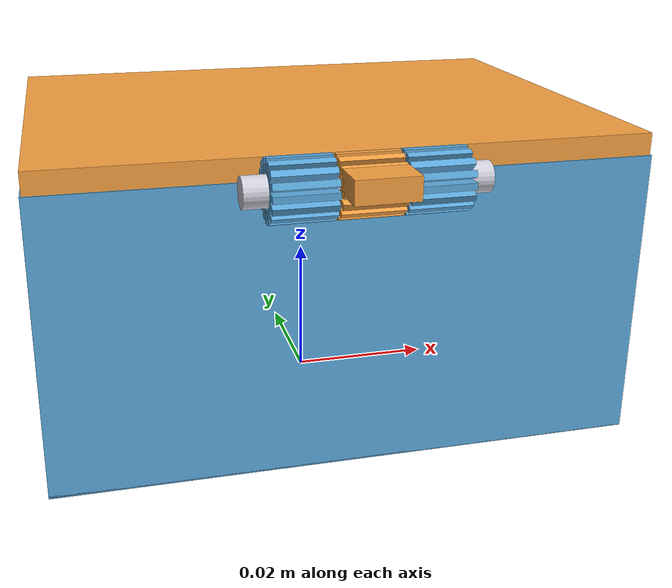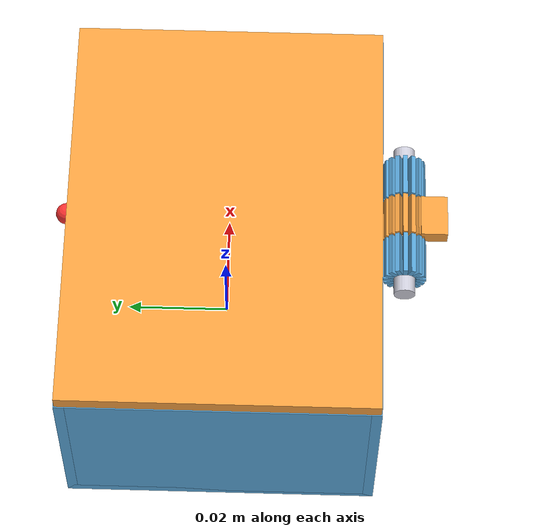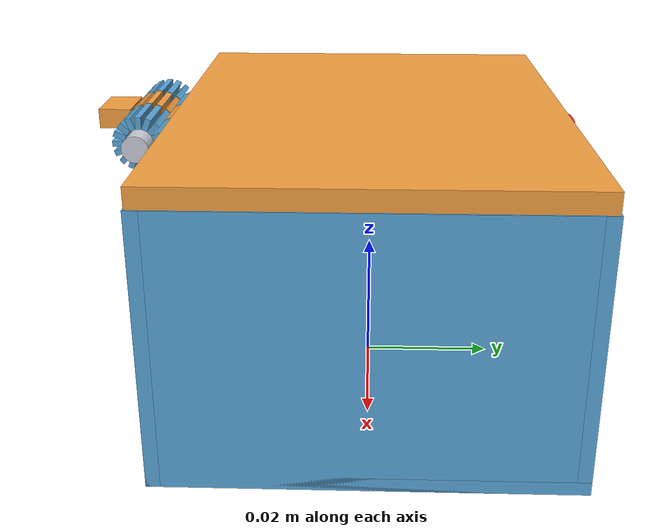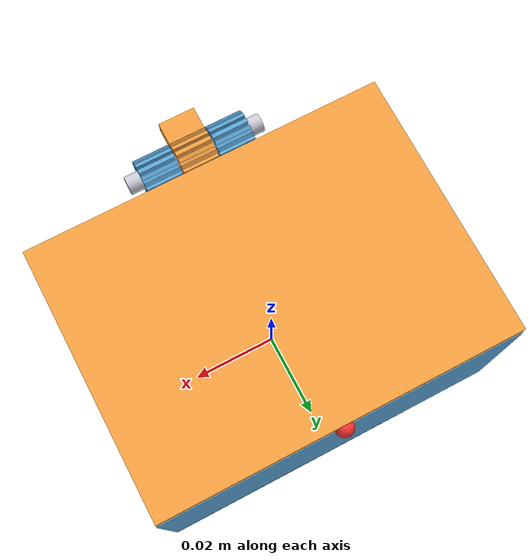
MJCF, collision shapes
<?xml version="1.0" ?>
<mujoco model="t2_easy_stop_V-B">
  <compiler angle="radian" meshdir="assets" autolimits="true"/>
  <option timestep="0.0005" integrator="implicitfast" cone="elliptic" impratio="10"/>
  <visual>
    <headlight ambient="0.5 0.5 0.5" diffuse="0.6 0.6 0.6" specular="0.2 0.2 0.2"/>
    <global offwidth="1280" offheight="960" azimuth="140" elevation="-20"/>
  </visual>
  <default>
    <geom solref="0.001 1.0" solimp="0.99 0.9999 0.0001" friction="0.3 0.005 0.0001" condim="4" density="0"/>
  </default>
  <asset>
    <material name="base" rgba="0.35 0.65 0.85 1"/>
    <material name="mover" rgba="0.95 0.62 0.25 1"/>
    <material name="hardware" rgba="0.8 0.8 0.85 1"/>
    <material name="other" rgba="0.6 0.75 0.6 1"/>
    <mesh name="P1_vis" file="easy_stop_P1_vis.stl"/>
    <mesh name="P2_vis" file="easy_stop_P2_vis.stl"/>
    <mesh name="P3_vis" file="easy_stop_P3_vis.stl"/>
  </asset>
  <worldbody>
    <light pos="0.15 -0.25 0.4" dir="-0.3 0.5 -1" directional="true" diffuse="0.5 0.5 0.5"/>
    <camera name="iso" pos="0.125 -0.125 0.115" xyaxes="0.707 0.707 0 -0.38 0.38 0.84"/>
    <body name="P1" pos="0 0 0">
      <inertial pos="-0.000000000 -0.001558055 0.015538949" mass="0.040040794" fullinertia="0.000028535059 0.000038574255 0.000052584728 -0.000000000000 -0.000000000000 0.000001275306"/>
      <geom name="P1_vis" type="mesh" mesh="P1_vis" contype="0" conaffinity="0" group="2" material="base"/>
      <geom name="P1_c0" type="box" pos="0.000000000 0.000000000 0.001000000" size="0.040000000 0.030000000 0.001000000" group="3" material="base" contype="1" conaffinity="1"/>
      <geom name="P1_c1" type="box" pos="0.000000000 -0.029000000 0.020000000" size="0.040000000 0.001000000 0.020000000" group="3" material="base" contype="1" conaffinity="1"/>
      <geom name="P1_c2" type="box" pos="0.000000000 0.029000000 0.020000000" size="0.040000000 0.001000000 0.020000000" group="3" material="base" contype="1" conaffinity="1"/>
      <geom name="P1_c3" type="box" pos="-0.039000000 0.000000000 0.020000000" size="0.001000000 0.028000000 0.020000000" group="3" material="base" contype="1" conaffinity="1"/>
      <geom name="P1_c4" type="box" pos="0.039000000 0.000000000 0.020000000" size="0.001000000 0.028000000 0.020000000" group="3" material="base" contype="1" conaffinity="1"/>
      <geom name="P1_c5" type="box" pos="-0.008300000 -0.030903940 0.040000000" size="0.004000000 0.000903940 0.000436040" group="3" material="base" contype="2" conaffinity="2" quat="1.000000 0.000000 0.000000 0.000000"/>
      <geom name="P1_c6" type="box" pos="-0.008300000 -0.031139613 0.041184811" size="0.004000000 0.000903940 0.000436040" group="3" material="base" contype="2" conaffinity="2" quat="0.980785 0.195090 0.000000 0.000000"/>
      <geom name="P1_c7" type="box" pos="-0.008300000 -0.031810755 0.042189245" size="0.004000000 0.000903940 0.000436040" group="3" material="base" contype="2" conaffinity="2" quat="0.923880 0.382683 0.000000 0.000000"/>
      <geom name="P1_c8" type="box" pos="-0.008300000 -0.032815189 0.042860387" size="0.004000000 0.000903940 0.000436040" group="3" material="base" contype="2" conaffinity="2" quat="0.831470 0.555570 0.000000 0.000000"/>
      <geom name="P1_c9" type="box" pos="-0.008300000 -0.034000000 0.043096060" size="0.004000000 0.000903940 0.000436040" group="3" material="base" contype="2" conaffinity="2" quat="0.707107 0.707107 0.000000 0.000000"/>
      <geom name="P1_c10" type="box" pos="-0.008300000 -0.035184811 0.042860387" size="0.004000000 0.000903940 0.000436040" group="3" material="base" contype="2" conaffinity="2" quat="0.555570 0.831470 0.000000 0.000000"/>
      <geom name="P1_c11" type="box" pos="-0.008300000 -0.036189245 0.042189245" size="0.004000000 0.000903940 0.000436040" group="3" material="base" contype="2" conaffinity="2" quat="0.382683 0.923880 0.000000 0.000000"/>
      <geom name="P1_c12" type="box" pos="-0.008300000 -0.036860387 0.041184811" size="0.004000000 0.000903940 0.000436040" group="3" material="base" contype="2" conaffinity="2" quat="0.195090 0.980785 0.000000 0.000000"/>
      <geom name="P1_c13" type="box" pos="-0.008300000 -0.037096060 0.040000000" size="0.004000000 0.000903940 0.000436040" group="3" material="base" contype="2" conaffinity="2" quat="0.000000 1.000000 0.000000 0.000000"/>
      <geom name="P1_c14" type="box" pos="-0.008300000 -0.036860387 0.038815189" size="0.004000000 0.000903940 0.000436040" group="3" material="base" contype="2" conaffinity="2" quat="-0.195090 0.980785 0.000000 0.000000"/>
      <geom name="P1_c15" type="box" pos="-0.008300000 -0.036189245 0.037810755" size="0.004000000 0.000903940 0.000436040" group="3" material="base" contype="2" conaffinity="2" quat="-0.382683 0.923880 0.000000 0.000000"/>
      <geom name="P1_c16" type="box" pos="-0.008300000 -0.035184811 0.037139613" size="0.004000000 0.000903940 0.000436040" group="3" material="base" contype="2" conaffinity="2" quat="-0.555570 0.831470 0.000000 0.000000"/>
      <geom name="P1_c17" type="box" pos="-0.008300000 -0.034000000 0.036903940" size="0.004000000 0.000903940 0.000436040" group="3" material="base" contype="2" conaffinity="2" quat="-0.707107 0.707107 0.000000 0.000000"/>
      <geom name="P1_c18" type="box" pos="-0.008300000 -0.032815189 0.037139613" size="0.004000000 0.000903940 0.000436040" group="3" material="base" contype="2" conaffinity="2" quat="0.831470 -0.555570 0.000000 0.000000"/>
      <geom name="P1_c19" type="box" pos="-0.008300000 -0.031810755 0.037810755" size="0.004000000 0.000903940 0.000436040" group="3" material="base" contype="2" conaffinity="2" quat="0.923880 -0.382683 0.000000 0.000000"/>
      <geom name="P1_c20" type="box" pos="-0.008300000 -0.031139613 0.038815189" size="0.004000000 0.000903940 0.000436040" group="3" material="base" contype="2" conaffinity="2" quat="0.980785 -0.195090 0.000000 0.000000"/>
      <geom name="P1_c21" type="box" pos="0.008300000 -0.030903940 0.040000000" size="0.004000000 0.000903940 0.000436040" group="3" material="base" contype="2" conaffinity="2" quat="1.000000 0.000000 0.000000 0.000000"/>
      <geom name="P1_c22" type="box" pos="0.008300000 -0.031139613 0.041184811" size="0.004000000 0.000903940 0.000436040" group="3" material="base" contype="2" conaffinity="2" quat="0.980785 0.195090 0.000000 0.000000"/>
      <geom name="P1_c23" type="box" pos="0.008300000 -0.031810755 0.042189245" size="0.004000000 0.000903940 0.000436040" group="3" material="base" contype="2" conaffinity="2" quat="0.923880 0.382683 0.000000 0.000000"/>
      <geom name="P1_c24" type="box" pos="0.008300000 -0.032815189 0.042860387" size="0.004000000 0.000903940 0.000436040" group="3" material="base" contype="2" conaffinity="2" quat="0.831470 0.555570 0.000000 0.000000"/>
      <geom name="P1_c25" type="box" pos="0.008300000 -0.034000000 0.043096060" size="0.004000000 0.000903940 0.000436040" group="3" material="base" contype="2" conaffinity="2" quat="0.707107 0.707107 0.000000 0.000000"/>
      <geom name="P1_c26" type="box" pos="0.008300000 -0.035184811 0.042860387" size="0.004000000 0.000903940 0.000436040" group="3" material="base" contype="2" conaffinity="2" quat="0.555570 0.831470 0.000000 0.000000"/>
      <geom name="P1_c27" type="box" pos="0.008300000 -0.036189245 0.042189245" size="0.004000000 0.000903940 0.000436040" group="3" material="base" contype="2" conaffinity="2" quat="0.382683 0.923880 0.000000 0.000000"/>
      <geom name="P1_c28" type="box" pos="0.008300000 -0.036860387 0.041184811" size="0.004000000 0.000903940 0.000436040" group="3" material="base" contype="2" conaffinity="2" quat="0.195090 0.980785 0.000000 0.000000"/>
      <geom name="P1_c29" type="box" pos="0.008300000 -0.037096060 0.040000000" size="0.004000000 0.000903940 0.000436040" group="3" material="base" contype="2" conaffinity="2" quat="0.000000 1.000000 0.000000 0.000000"/>
      <geom name="P1_c30" type="box" pos="0.008300000 -0.036860387 0.038815189" size="0.004000000 0.000903940 0.000436040" group="3" material="base" contype="2" conaffinity="2" quat="-0.195090 0.980785 0.000000 0.000000"/>
      <geom name="P1_c31" type="box" pos="0.008300000 -0.036189245 0.037810755" size="0.004000000 0.000903940 0.000436040" group="3" material="base" contype="2" conaffinity="2" quat="-0.382683 0.923880 0.000000 0.000000"/>
      <geom name="P1_c32" type="box" pos="0.008300000 -0.035184811 0.037139613" size="0.004000000 0.000903940 0.000436040" group="3" material="base" contype="2" conaffinity="2" quat="-0.555570 0.831470 0.000000 0.000000"/>
      <geom name="P1_c33" type="box" pos="0.008300000 -0.034000000 0.036903940" size="0.004000000 0.000903940 0.000436040" group="3" material="base" contype="2" conaffinity="2" quat="-0.707107 0.707107 0.000000 0.000000"/>
      <geom name="P1_c34" type="box" pos="0.008300000 -0.032815189 0.037139613" size="0.004000000 0.000903940 0.000436040" group="3" material="base" contype="2" conaffinity="2" quat="0.831470 -0.555570 0.000000 0.000000"/>
      <geom name="P1_c35" type="box" pos="0.008300000 -0.031810755 0.037810755" size="0.004000000 0.000903940 0.000436040" group="3" material="base" contype="2" conaffinity="2" quat="0.923880 -0.382683 0.000000 0.000000"/>
      <geom name="P1_c36" type="box" pos="0.008300000 -0.031139613 0.038815189" size="0.004000000 0.000903940 0.000436040" group="3" material="base" contype="2" conaffinity="2" quat="0.980785 -0.195090 0.000000 0.000000"/>
      <site name="axis_ref" pos="0.000000000 -0.034000000 0.040000000" size="0.0012" rgba="0.1 0.9 0.2 1"/>
    </body>
    <body name="P2" pos="0 0 0">
      <freejoint name="P2_free"/>
      <inertial pos="-0.000000000 -0.000506559 0.041363778" mass="0.019079695" fullinertia="0.000006359977 0.000009746120 0.000016032942 -0.000000000000 -0.000000000000 0.000000047630"/>
      <geom name="P2_vis" type="mesh" mesh="P2_vis" contype="0" conaffinity="0" group="2" material="mover"/>
      <geom name="P2_c0" type="box" pos="0.000000000 0.000000000 0.041500000" size="0.039800000 0.029800000 0.001500000" group="3" material="mover" contype="1" conaffinity="1"/>
      <geom name="P2_c1" type="box" pos="0.000000000 -0.030903940 0.040000000" size="0.004000000 0.000903940 0.000436040" group="3" material="mover" contype="2" conaffinity="2" quat="1.000000 0.000000 0.000000 0.000000"/>
      <geom name="P2_c2" type="box" pos="0.000000000 -0.031139613 0.041184811" size="0.004000000 0.000903940 0.000436040" group="3" material="mover" contype="2" conaffinity="2" quat="0.980785 0.195090 0.000000 0.000000"/>
      <geom name="P2_c3" type="box" pos="0.000000000 -0.031810755 0.042189245" size="0.004000000 0.000903940 0.000436040" group="3" material="mover" contype="2" conaffinity="2" quat="0.923880 0.382683 0.000000 0.000000"/>
      <geom name="P2_c4" type="box" pos="0.000000000 -0.032815189 0.042860387" size="0.004000000 0.000903940 0.000436040" group="3" material="mover" contype="2" conaffinity="2" quat="0.831470 0.555570 0.000000 0.000000"/>
      <geom name="P2_c5" type="box" pos="0.000000000 -0.034000000 0.043096060" size="0.004000000 0.000903940 0.000436040" group="3" material="mover" contype="2" conaffinity="2" quat="0.707107 0.707107 0.000000 0.000000"/>
      <geom name="P2_c6" type="box" pos="0.000000000 -0.035184811 0.042860387" size="0.004000000 0.000903940 0.000436040" group="3" material="mover" contype="2" conaffinity="2" quat="0.555570 0.831470 0.000000 0.000000"/>
      <geom name="P2_c7" type="box" pos="0.000000000 -0.036189245 0.042189245" size="0.004000000 0.000903940 0.000436040" group="3" material="mover" contype="2" conaffinity="2" quat="0.382683 0.923880 0.000000 0.000000"/>
      <geom name="P2_c8" type="box" pos="0.000000000 -0.036860387 0.041184811" size="0.004000000 0.000903940 0.000436040" group="3" material="mover" contype="2" conaffinity="2" quat="0.195090 0.980785 0.000000 0.000000"/>
      <geom name="P2_c9" type="box" pos="0.000000000 -0.037096060 0.040000000" size="0.004000000 0.000903940 0.000436040" group="3" material="mover" contype="2" conaffinity="2" quat="0.000000 1.000000 0.000000 0.000000"/>
      <geom name="P2_c10" type="box" pos="0.000000000 -0.036860387 0.038815189" size="0.004000000 0.000903940 0.000436040" group="3" material="mover" contype="2" conaffinity="2" quat="-0.195090 0.980785 0.000000 0.000000"/>
      <geom name="P2_c11" type="box" pos="0.000000000 -0.036189245 0.037810755" size="0.004000000 0.000903940 0.000436040" group="3" material="mover" contype="2" conaffinity="2" quat="-0.382683 0.923880 0.000000 0.000000"/>
      <geom name="P2_c12" type="box" pos="0.000000000 -0.035184811 0.037139613" size="0.004000000 0.000903940 0.000436040" group="3" material="mover" contype="2" conaffinity="2" quat="-0.555570 0.831470 0.000000 0.000000"/>
      <geom name="P2_c13" type="box" pos="0.000000000 -0.034000000 0.036903940" size="0.004000000 0.000903940 0.000436040" group="3" material="mover" contype="2" conaffinity="2" quat="-0.707107 0.707107 0.000000 0.000000"/>
      <geom name="P2_c14" type="box" pos="0.000000000 -0.032815189 0.037139613" size="0.004000000 0.000903940 0.000436040" group="3" material="mover" contype="2" conaffinity="2" quat="0.831470 -0.555570 0.000000 0.000000"/>
      <geom name="P2_c15" type="box" pos="0.000000000 -0.031810755 0.037810755" size="0.004000000 0.000903940 0.000436040" group="3" material="mover" contype="2" conaffinity="2" quat="0.923880 -0.382683 0.000000 0.000000"/>
      <geom name="P2_c16" type="box" pos="0.000000000 -0.031139613 0.038815189" size="0.004000000 0.000903940 0.000436040" group="3" material="mover" contype="2" conaffinity="2" quat="0.980785 -0.195090 0.000000 0.000000"/>
      <geom name="P2_c17" type="box" pos="0.000000000 -0.039500000 0.041500000" size="0.004000000 0.002500000 0.001500000" group="3" material="mover" contype="1" conaffinity="1"/>
      <site name="tip" pos="0.000000000 0.030000000 0.040000000" size="0.002" rgba="1 0.2 0.2 1"/>
      <site name="latch" pos="0.000000000 0.028000000 0.028000000" size="0.002" rgba="0.2 0.8 0.2 1"/>
    </body>
    <body name="P3" pos="0 0 0">
      <freejoint name="P3_free"/>
      <inertial pos="-0.000000000 -0.034000000 0.040000000" mass="0.000487545" fullinertia="0.000000000973 0.000000038530 0.000000038530 0.000000000000 -0.000000000000 -0.000000000000"/>
      <geom name="P3_vis" type="mesh" mesh="P3_vis" contype="0" conaffinity="0" group="2" material="hardware"/>
      <geom name="P3_c0" type="cylinder" pos="0.000000000 -0.034000000 0.040000000" size="0.002000000 0.015300000" group="3" material="hardware" contype="2" conaffinity="2" euler="0.000000000 1.570796327 0.000000000"/>
      <site name="pin_center" pos="0.000000000 -0.034000000 0.040000000" size="0.0012" rgba="0.9 0.1 0.9 1"/>
    </body>
  </worldbody>
</mujoco>
